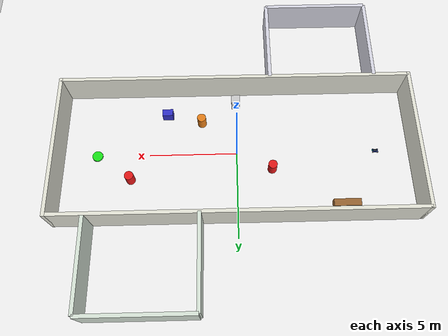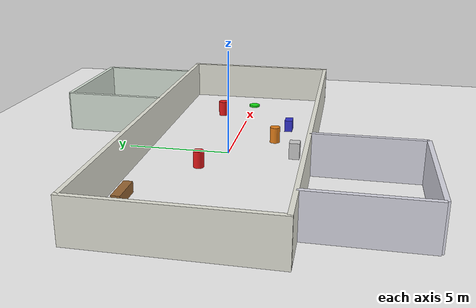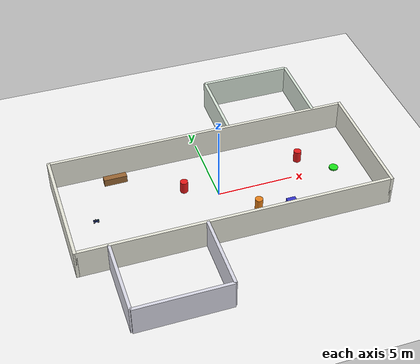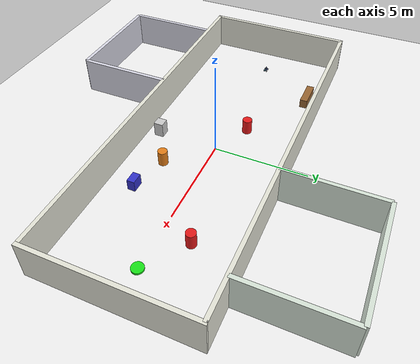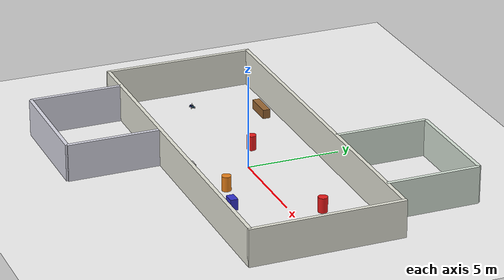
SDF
<?xml version="1.0" ?>
<sdf version="1.8">
  <world name="hospital_corridor">

    <plugin filename="gz-sim-physics-system" name="gz::sim::systems::Physics"/>
    <plugin filename="gz-sim-scene-broadcaster-system" name="gz::sim::systems::SceneBroadcaster"/>
    <plugin filename="gz-sim-user-commands-system" name="gz::sim::systems::UserCommands"/>
    <plugin filename="gz-sim-sensors-system" name="gz::sim::systems::Sensors">
      <render_engine>ogre</render_engine>
    </plugin>

    <scene>
      <ambient>1.0 1.0 1.0 1.0</ambient>
      <background>0.8 0.9 1.0 1.0</background>
      <shadows>false</shadows>
    </scene>

    <light type="directional" name="sun">
      <cast_shadows>false</cast_shadows>
      <pose>0 0 10 0 0 0</pose>
      <diffuse>1.0 1.0 1.0 1</diffuse>
      <specular>0.3 0.3 0.3 1</specular>
      <direction>0 0 -1</direction>
    </light>

    <!-- FLOOR -->
    <model name="ground_plane">
      <static>true</static>
      <link name="link">
        <collision name="collision">
          <geometry><plane><normal>0 0 1</normal><size>50 50</size></plane></geometry>
        </collision>
        <visual name="visual">
          <geometry><plane><normal>0 0 1</normal><size>50 50</size></plane></geometry>
          <material><ambient>0.95 0.95 0.95 1</ambient><diffuse>0.95 0.95 0.95 1</diffuse></material>
        </visual>
      </link>
    </model>

    <!-- ========== MAIN CORRIDOR (horizontal) ========== -->
    <!-- Left wall -->
    <model name="main_wall_left">
      <static>true</static>
      <pose>0 -4 1 0 0 0</pose>
      <link name="link">
        <collision name="collision"><geometry><box><size>20 0.2 2</size></box></geometry></collision>
        <visual name="visual">
          <geometry><box><size>20 0.2 2</size></box></geometry>
          <material><ambient>0.9 0.9 0.85 1</ambient><diffuse>0.9 0.9 0.85 1</diffuse></material>
        </visual>
      </link>
    </model>

    <!-- Right wall -->
    <model name="main_wall_right">
      <static>true</static>
      <pose>0 4 1 0 0 0</pose>
      <link name="link">
        <collision name="collision"><geometry><box><size>20 0.2 2</size></box></geometry></collision>
        <visual name="visual">
          <geometry><box><size>20 0.2 2</size></box></geometry>
          <material><ambient>0.9 0.9 0.85 1</ambient><diffuse>0.9 0.9 0.85 1</diffuse></material>
        </visual>
      </link>
    </model>

    <!-- End wall -->
    <model name="main_wall_end">
      <static>true</static>
      <pose>10 0 1 0 0 0</pose>
      <link name="link">
        <collision name="collision"><geometry><box><size>0.2 8.2 2</size></box></geometry></collision>
        <visual name="visual">
          <geometry><box><size>0.2 8.2 2</size></box></geometry>
          <material><ambient>0.9 0.9 0.85 1</ambient><diffuse>0.9 0.9 0.85 1</diffuse></material>
        </visual>
      </link>
    </model>

    <!-- Start wall -->
    <model name="main_wall_start">
      <static>true</static>
      <pose>-10 0 1 0 0 0</pose>
      <link name="link">
        <collision name="collision"><geometry><box><size>0.2 8.2 2</size></box></geometry></collision>
        <visual name="visual">
          <geometry><box><size>0.2 8.2 2</size></box></geometry>
          <material><ambient>0.9 0.9 0.85 1</ambient><diffuse>0.9 0.9 0.85 1</diffuse></material>
        </visual>
      </link>
    </model>

    <model name="room1_wall_back">
      <static>true</static>
      <pose>-5 -9 1 0 0 0</pose>
      <link name="link">
        <collision name="collision"><geometry><box><size>6 0.2 2</size></box></geometry></collision>
        <visual name="visual">
          <geometry><box><size>6 0.2 2</size></box></geometry>
          <material><ambient>0.85 0.85 0.9 1</ambient><diffuse>0.85 0.85 0.9 1</diffuse></material>
        </visual>
      </link>
    </model>

    <model name="room1_wall_left">
      <static>true</static>
      <pose>-8 -6.5 1 0 0 0</pose>
      <link name="link">
        <collision name="collision"><geometry><box><size>0.2 5 2</size></box></geometry></collision>
        <visual name="visual">
          <geometry><box><size>0.2 5 2</size></box></geometry>
          <material><ambient>0.85 0.85 0.9 1</ambient><diffuse>0.85 0.85 0.9 1</diffuse></material>
        </visual>
      </link>
    </model>

    <model name="room1_wall_right">
      <static>true</static>
      <pose>-2 -6.5 1 0 0 0</pose>
      <link name="link">
        <collision name="collision"><geometry><box><size>0.2 5 2</size></box></geometry></collision>
        <visual name="visual">
          <geometry><box><size>0.2 5 2</size></box></geometry>
          <material><ambient>0.85 0.85 0.9 1</ambient><diffuse>0.85 0.85 0.9 1</diffuse></material>
        </visual>
      </link>
    </model>

    <!-- ========== ROOM 2 (right side) ========== -->
    <model name="room2_wall_back">
      <static>true</static>
      <pose>5 9 1 0 0 0</pose>
      <link name="link">
        <collision name="collision"><geometry><box><size>6 0.2 2</size></box></geometry></collision>
        <visual name="visual">
          <geometry><box><size>6 0.2 2</size></box></geometry>
          <material><ambient>0.85 0.9 0.85 1</ambient><diffuse>0.85 0.9 0.85 1</diffuse></material>
        </visual>
      </link>
    </model>

    <model name="room2_wall_left">
      <static>true</static>
      <pose>2 6.5 1 0 0 0</pose>
      <link name="link">
        <collision name="collision"><geometry><box><size>0.2 5 2</size></box></geometry></collision>
        <visual name="visual">
          <geometry><box><size>0.2 5 2</size></box></geometry>
          <material><ambient>0.85 0.9 0.85 1</ambient><diffuse>0.85 0.9 0.85 1</diffuse></material>
        </visual>
      </link>
    </model>

    <model name="room2_wall_right">
      <static>true</static>
      <pose>8 6.5 1 0 0 0</pose>
      <link name="link">
        <collision name="collision"><geometry><box><size>0.2 5 2</size></box></geometry></collision>
        <visual name="visual">
          <geometry><box><size>0.2 5 2</size></box></geometry>
          <material><ambient>0.85 0.9 0.85 1</ambient><diffuse>0.85 0.9 0.85 1</diffuse></material>
        </visual>
      </link>
    </model>

    <!-- ========== OBSTACLES (simulating people/wheelchairs) ========== -->
    <!-- Person 1 — red, center corridor -->
    <model name="person_1">
      <plugin filename="ignition-gazebo-velocity-control-system"
        name="ignition::gazebo::systems::VelocityControl">
      </plugin>
      <pose>-2 1 0.4 0 0 0</pose>
      <link name="link">
        <kinematic>true</kinematic>
        <inertial>
          <mass>70</mass>

          <inertia>
            <ixx>3.90</ixx><iyy>3.90</iyy><izz>2.19</izz>
            <ixy>0</ixy><ixz>0</ixz><iyz>0</iyz>
          </inertia>
        </inertial>
        <collision name="collision"><geometry><cylinder><radius>0.25</radius><length>0.8</length></cylinder></geometry></collision>
        <visual name="visual">
          <geometry><cylinder><radius>0.25</radius><length>0.8</length></cylinder></geometry>
          <material><ambient>0.9 0.1 0.1 1</ambient><diffuse>0.9 0.1 0.1 1</diffuse></material>
        </visual>
      </link>
    </model>

    <!-- Person 2 — orange, left side -->
    <model name="person_2">
      <plugin filename="ignition-gazebo-velocity-control-system"
        name="ignition::gazebo::systems::VelocityControl">
      </plugin>
      <pose>2 -2 0.4 0 0 0</pose>
      <link name="link">
        <kinematic>true</kinematic>
        <inertial>
          <mass>70</mass>
          <inertia>
            <ixx>3.90</ixx><iyy>3.90</iyy><izz>2.19</izz>
            <ixy>0</ixy><ixz>0</ixz><iyz>0</iyz>
          </inertia>
        </inertial>
        <collision name="collision"><geometry><cylinder><radius>0.25</radius><length>0.8</length></cylinder></geometry></collision>
        <visual name="visual">
          <geometry><cylinder><radius>0.25</radius><length>0.8</length></cylinder></geometry>
          <material><ambient>0.9 0.5 0.1 1</ambient><diffuse>0.9 0.5 0.1 1</diffuse></material>
        </visual>
      </link>
    </model>

    <model name="person_3">
      <static>true</static>
      <pose>6 1.5 0.4 0 0 0</pose>
      <link name="link">
        <collision name="collision"><geometry><cylinder><radius>0.25</radius><length>0.8</length></cylinder></geometry></collision>
        <visual name="visual">
          <geometry><cylinder><radius>0.25</radius><length>0.8</length></cylinder></geometry>
          <material><ambient>0.9 0.1 0.1 1</ambient><diffuse>0.9 0.1 0.1 1</diffuse></material>
        </visual>
      </link>
    </model>

    <!-- Wheelchair/trolley obstacle -->
    <model name="trolley_1">
      <static>true</static>
      <pose>4 -2.5 0.3 0 0 0</pose>
      <link name="link">
        <collision name="collision"><geometry><box><size>0.6 0.4 0.6</size></box></geometry></collision>
        <visual name="visual">
          <geometry><box><size>0.6 0.4 0.6</size></box></geometry>
          <material><ambient>0.2 0.2 0.8 1</ambient><diffuse>0.2 0.2 0.8 1</diffuse></material>
        </visual>
      </link>
    </model>

    <!-- Bench against wall -->
    <model name="bench_1">
      <static>true</static>
      <pose>-6 3.2 0.25 0 0 0</pose>
      <link name="link">
        <collision name="collision"><geometry><box><size>1.5 0.4 0.5</size></box></geometry></collision>
        <visual name="visual">
          <geometry><box><size>1.5 0.4 0.5</size></box></geometry>
          <material><ambient>0.6 0.4 0.2 1</ambient><diffuse>0.6 0.4 0.2 1</diffuse></material>
        </visual>
      </link>
    </model>

    <!-- Medical cart -->
    <model name="cart_1">
      <static>true</static>
      <pose>0 -3.2 0.4 0 0 0</pose>
      <link name="link">
        <collision name="collision"><geometry><box><size>0.5 0.5 0.8</size></box></geometry></collision>
        <visual name="visual">
          <geometry><box><size>0.5 0.5 0.8</size></box></geometry>
          <material><ambient>0.8 0.8 0.8 1</ambient><diffuse>0.8 0.8 0.8 1</diffuse></material>
        </visual>
      </link>
    </model>

    <!-- ========== GOAL MARKER (green cylinder at end) ========== -->

    <model name="goal_marker">
      <static>true</static>
      <pose>8 0 0.05 0 0 0</pose>
      <link name="link">
        <visual name="visual">
          <geometry><cylinder><radius>0.3</radius><length>0.1</length></cylinder></geometry>
          <material><ambient>0.1 0.9 0.1 1</ambient><diffuse>0.1 0.9 0.1 1</diffuse></material>
        </visual>
      </link>
    </model>

    <include>
      <uri>../models/robot.sdf</uri>
      <name>ackermann_robot</name>
      <pose>-8 0 0.1 0 0 0</pose>
    </include>

  </world>
</sdf>

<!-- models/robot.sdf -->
<sdf version='1.7'>
  <model name='ackermann_chassis'>
    <link name='base_link'>
      <inertial>
        <pose>0.009651 0 0.006771 0 -0 0</pose>
        <mass>1.6461</mass>
        <inertia>
          <ixx>0.00465958</ixx>
          <ixy>0</ixy>
          <ixz>-0.000336573</ixz>
          <iyy>0.0160594</iyy>
          <iyz>0</iyz>
          <izz>0.0170788</izz>
        </inertia>
      </inertial>
      <collision name='base_link_collision'>
        <pose>0 0 0 0 -0 0</pose>
        <geometry>
          <box>
            <size>0.3 0.15 0.07</size>
          </box>
        </geometry>
      </collision>
      <collision name='base_link_fixed_joint_lump__camera_link_collision_1'>
        <pose>0.175 0 0.04 0 0.523 0</pose>
        <geometry>
          <box>
            <size>0.05 0.05 0.03</size>
          </box>
        </geometry>
        <surface>
          <contact>
            <ode/>
          </contact>
          <friction>
            <ode/>
          </friction>
        </surface>
      </collision>
      <collision name='base_link_fixed_joint_lump__lidar_link_collision_2'>
        <pose>-0.035 0 0.155 0 -0 0</pose>
        <geometry>
          <cylinder>
            <length>0.0348</length>
            <radius>0.02315</radius>
          </cylinder>
        </geometry>
        <surface>
          <contact>
            <ode/>
          </contact>
          <friction>
            <ode/>
          </friction>
        </surface>
      </collision>
      <visual name='base_link_visual'>
        <pose>0 0 0 0 -0 0</pose>
        <geometry>
          <box>
            <size>0.3 0.15 0.07</size>
          </box>
        </geometry>
        <material>
          <ambient>0.02 0.08 0.42 1</ambient>
          <diffuse>0.03 0.16 0.72 1</diffuse>
          <specular>0.18 0.18 0.2 1</specular>
        </material>
      </visual>
      <visual name='upper_deck_visual'>
        <pose>0 0 0.04 0 0 0</pose>
        <geometry>
          <box>
            <size>0.24 0.13 0.014</size>
          </box>
        </geometry>
        <material>
          <ambient>0.08 0.1 0.14 1</ambient>
          <diffuse>0.12 0.15 0.2 1</diffuse>
          <specular>0.12 0.12 0.12 1</specular>
        </material>
      </visual>
      <visual name='front_bumper_visual'>
        <pose>0.154 0 0 0 0 0</pose>
        <geometry>
          <box>
            <size>0.016 0.17 0.04</size>
          </box>
        </geometry>
        <material>
          <ambient>0.04 0.05 0.06 1</ambient>
          <diffuse>0.07 0.08 0.09 1</diffuse>
        </material>
      </visual>
      <visual name='base_link_fixed_joint_lump__camera_link_visual_1'>
        <pose>0.175 0 0.04 0 0.523 0</pose>
        <geometry>
          <box>
            <size>0.05 0.05 0.03</size>
          </box>
        </geometry>
        <material>
          <ambient>0.02 0.45 0.38 1</ambient>
          <diffuse>0.03 0.72 0.58 1</diffuse>
        </material>
      </visual>
      <visual name='base_link_fixed_joint_lump__lidar_link_visual_2'>
        <pose>-0.035 0 0.155 0 -0 0</pose>
        <geometry>
          <cylinder>
            <length>0.0348</length>
            <radius>0.02315</radius>
          </cylinder>
        </geometry>
        <material>
          <ambient>0.04 0.04 0.05 1</ambient>
          <diffuse>0.08 0.08 0.09 1</diffuse>
        </material>
      </visual>
      <sensor name='camera' type='camera'>
        <topic>/camera/image_raw</topic>
        <update_rate>30</update_rate>
        <camera>
          <horizontal_fov>1.39626</horizontal_fov>
          <image>
            <width>640</width>
            <height>480</height>
            <format>R8G8B8</format>
          </image>
          <clip>
            <near>0.02</near>
            <far>300</far>
          </clip>
        </camera>
        <always_on>1</always_on>
        <visualize>1</visualize>
        <pose>0.175 0 0.04 0 0.523 0</pose>
      </sensor>
      <sensor name='lidar' type='gpu_lidar'>
        <topic>/scan</topic>
        <update_rate>10</update_rate>
        <lidar>
          <scan>
            <horizontal>
              <samples>360</samples>
              <resolution>1</resolution>
              <min_angle>-3.14159</min_angle>
              <max_angle>3.14159</max_angle>
            </horizontal>
          </scan>
          <range>
            <min>0.12</min>
            <max>10</max>
            <resolution>0.01</resolution>
          </range>
        </lidar>
        <always_on>1</always_on>
        <visualize>1</visualize>
        <pose>-0.035 0 0.155 0 -0 0</pose>
      </sensor>
    </link>
    <joint name='front_left_steer_joint' type='revolute'>
      <pose relative_to='base_link'>0.1285 0.096 -0.035 0 -0 0</pose>
      <parent>base_link</parent>
      <child>front_left_steer_link</child>
      <axis>
        <xyz>0 0 1</xyz>
        <limit>
          <lower>-0.5</lower>
          <upper>0.5</upper>
          <effort>10</effort>
          <velocity>1</velocity>
        </limit>
        <dynamics>
          <spring_reference>0</spring_reference>
          <spring_stiffness>0</spring_stiffness>
        </dynamics>
      </axis>
    </joint>
    <link name='front_left_steer_link'>
      <pose relative_to='front_left_steer_joint'>0 0 0 0 -0 0</pose>
      <inertial>
        <pose>0 0 0 0 -0 0</pose>
        <mass>0.05</mass>
        <inertia>
          <ixx>8.33333e-07</ixx>
          <ixy>0</ixy>
          <ixz>0</ixz>
          <iyy>8.33333e-07</iyy>
          <iyz>0</iyz>
          <izz>8.33333e-07</izz>
        </inertia>
      </inertial>
    </link>
    <joint name='front_left_wheel_joint' type='revolute'>
      <pose relative_to='front_left_steer_link'>0 0 0 -1.5707 0 0</pose>
      <parent>front_left_steer_link</parent>
      <child>front_left_wheel_link</child>
      <axis>
        <xyz>0 0 1</xyz>
        <limit>
          <lower>-1e+16</lower>
          <upper>1e+16</upper>
          <effort>10</effort>
          <velocity>10</velocity>
        </limit>
        <dynamics>
          <spring_reference>0</spring_reference>
          <spring_stiffness>0</spring_stiffness>
        </dynamics>
      </axis>
    </joint>
    <link name='front_left_wheel_link'>
      <pose relative_to='front_left_wheel_joint'>0 0 0 0 -0 0</pose>
      <inertial>
        <pose>0 0 0 0 -0 0</pose>
        <mass>0.1</mass>
        <inertia>
          <ixx>6.58333e-05</ixx>
          <ixy>0</ixy>
          <ixz>0</ixz>
          <iyy>6.58333e-05</iyy>
          <iyz>0</iyz>
          <izz>0.000125</izz>
        </inertia>
      </inertial>
      <collision name='front_left_wheel_link_collision'>
        <pose>0 0 0 0 -0 0</pose>
        <geometry>
          <cylinder>
            <length>0.02</length>
            <radius>0.05</radius>
          </cylinder>
        </geometry>
        <surface>
          <friction>
            <ode>
              <mu>0.9</mu>
              <mu2>0.9</mu2>
            </ode>
          </friction>
        </surface>
      </collision>
      <visual name='front_left_wheel_link_visual'>
        <pose>0 0 0 0 -0 0</pose>
        <geometry>
          <cylinder>
            <length>0.02</length>
            <radius>0.05</radius>
          </cylinder>
        </geometry>
        <material>
          <ambient>0.025 0.025 0.03 1</ambient>
          <diffuse>0.05 0.05 0.06 1</diffuse>
        </material>
      </visual>
    </link>
    <joint name='front_right_steer_joint' type='revolute'>
      <pose relative_to='base_link'>0.1285 -0.096 -0.035 0 -0 0</pose>
      <parent>base_link</parent>
      <child>front_right_steer_link</child>
      <axis>
        <xyz>0 0 1</xyz>
        <limit>
          <lower>-0.5</lower>
          <upper>0.5</upper>
          <effort>10</effort>
          <velocity>1</velocity>
        </limit>
        <dynamics>
          <spring_reference>0</spring_reference>
          <spring_stiffness>0</spring_stiffness>
        </dynamics>
      </axis>
    </joint>
    <link name='front_right_steer_link'>
      <pose relative_to='front_right_steer_joint'>0 0 0 0 -0 0</pose>
      <inertial>
        <pose>0 0 0 0 -0 0</pose>
        <mass>0.05</mass>
        <inertia>
          <ixx>8.33333e-07</ixx>
          <ixy>0</ixy>
          <ixz>0</ixz>
          <iyy>8.33333e-07</iyy>
          <iyz>0</iyz>
          <izz>8.33333e-07</izz>
        </inertia>
      </inertial>
    </link>
    <joint name='front_right_wheel_joint' type='revolute'>
      <pose relative_to='front_right_steer_link'>0 0 0 -1.5707 0 0</pose>
      <parent>front_right_steer_link</parent>
      <child>front_right_wheel_link</child>
      <axis>
        <xyz>0 0 1</xyz>
        <limit>
          <lower>-1e+16</lower>
          <upper>1e+16</upper>
          <effort>10</effort>
          <velocity>10</velocity>
        </limit>
        <dynamics>
          <spring_reference>0</spring_reference>
          <spring_stiffness>0</spring_stiffness>
        </dynamics>
      </axis>
    </joint>
    <link name='front_right_wheel_link'>
      <pose relative_to='front_right_wheel_joint'>0 0 0 0 -0 0</pose>
      <inertial>
        <pose>0 0 0 0 -0 0</pose>
        <mass>0.1</mass>
        <inertia>
          <ixx>6.58333e-05</ixx>
          <ixy>0</ixy>
          <ixz>0</ixz>
          <iyy>6.58333e-05</iyy>
          <iyz>0</iyz>
          <izz>0.000125</izz>
        </inertia>
      </inertial>
      <collision name='front_right_wheel_link_collision'>
        <pose>0 0 0 0 -0 0</pose>
        <geometry>
          <cylinder>
            <length>0.02</length>
            <radius>0.05</radius>
          </cylinder>
        </geometry>
        <surface>
          <friction>
            <ode>
              <mu>0.9</mu>
              <mu2>0.9</mu2>
            </ode>
          </friction>
        </surface>
      </collision>
      <visual name='front_right_wheel_link_visual'>
        <pose>0 0 0 0 -0 0</pose>
        <geometry>
          <cylinder>
            <length>0.02</length>
            <radius>0.05</radius>
          </cylinder>
        </geometry>
        <material>
          <ambient>0.025 0.025 0.03 1</ambient>
          <diffuse>0.05 0.05 0.06 1</diffuse>
        </material>
      </visual>
    </link>
    <joint name='rear_left_wheel_joint' type='revolute'>
      <pose relative_to='base_link'>-0.1285 0.096 -0.035 -1.5707 0 0</pose>
      <parent>base_link</parent>
      <child>rear_left_wheel</child>
      <axis>
        <xyz>0 0 1</xyz>
        <limit>
          <lower>-1e+16</lower>
          <upper>1e+16</upper>
          <effort>10</effort>
          <velocity>10</velocity>
        </limit>
        <dynamics>
          <spring_reference>0</spring_reference>
          <spring_stiffness>0</spring_stiffness>
        </dynamics>
      </axis>
    </joint>
    <link name='rear_left_wheel'>
      <pose relative_to='rear_left_wheel_joint'>0 0 0 0 -0 0</pose>
      <inertial>
        <pose>0 0 0 0 -0 0</pose>
        <mass>0.1</mass>
        <inertia>
          <ixx>6.58333e-05</ixx>
          <ixy>0</ixy>
          <ixz>0</ixz>
          <iyy>6.58333e-05</iyy>
          <iyz>0</iyz>
          <izz>0.000125</izz>
        </inertia>
      </inertial>
      <collision name='rear_left_wheel_collision'>
        <pose>0 0 0 0 -0 0</pose>
        <geometry>
          <cylinder>
            <length>0.02</length>
            <radius>0.05</radius>
          </cylinder>
        </geometry>
        <surface>
          <friction>
            <ode>
              <mu>0.9</mu>
              <mu2>0.9</mu2>
            </ode>
          </friction>
        </surface>
      </collision>
      <visual name='rear_left_wheel_visual'>
        <pose>0 0 0 0 -0 0</pose>
        <geometry>
          <cylinder>
            <length>0.02</length>
            <radius>0.05</radius>
          </cylinder>
        </geometry>
        <material>
          <ambient>0.025 0.025 0.03 1</ambient>
          <diffuse>0.05 0.05 0.06 1</diffuse>
        </material>
      </visual>
    </link>
    <joint name='rear_right_wheel_joint' type='revolute'>
      <pose relative_to='base_link'>-0.1285 -0.096 -0.035 -1.5707 0 0</pose>
      <parent>base_link</parent>
      <child>rear_right_wheel</child>
      <axis>
        <xyz>0 0 1</xyz>
        <limit>
          <lower>-1e+16</lower>
          <upper>1e+16</upper>
          <effort>10</effort>
          <velocity>10</velocity>
        </limit>
        <dynamics>
          <spring_reference>0</spring_reference>
          <spring_stiffness>0</spring_stiffness>
        </dynamics>
      </axis>
    </joint>
    <link name='rear_right_wheel'>
      <pose relative_to='rear_right_wheel_joint'>0 0 0 0 -0 0</pose>
      <inertial>
        <pose>0 0 0 0 -0 0</pose>
        <mass>0.1</mass>
        <inertia>
          <ixx>6.58333e-05</ixx>
          <ixy>0</ixy>
          <ixz>0</ixz>
          <iyy>6.58333e-05</iyy>
          <iyz>0</iyz>
          <izz>0.000125</izz>
        </inertia>
      </inertial>
      <collision name='rear_right_wheel_collision'>
        <pose>0 0 0 0 -0 0</pose>
        <geometry>
          <cylinder>
            <length>0.02</length>
            <radius>0.05</radius>
          </cylinder>
        </geometry>
        <surface>
          <friction>
            <ode>
              <mu>0.9</mu>
              <mu2>0.9</mu2>
            </ode>
          </friction>
        </surface>
      </collision>
      <visual name='rear_right_wheel_visual'>
        <pose>0 0 0 0 -0 0</pose>
        <geometry>
          <cylinder>
            <length>0.02</length>
            <radius>0.05</radius>
          </cylinder>
        </geometry>
        <material>
          <ambient>0.025 0.025 0.03 1</ambient>
          <diffuse>0.05 0.05 0.06 1</diffuse>
        </material>
      </visual>
    </link>
    <static>0</static>
    <plugin name='gz::sim::systems::AckermannSteering' filename='gz-sim-ackermann-steering-system'>
      <left_joint>rear_left_wheel_joint</left_joint>
      <right_joint>rear_right_wheel_joint</right_joint>
      <left_steering_joint>front_left_steer_joint</left_steering_joint>
      <right_steering_joint>front_right_steer_joint</right_steering_joint>
      <kingpin_width>0.192</kingpin_width>
      <steering_limit>0.5</steering_limit>
      <wheel_base>0.257</wheel_base>
      <wheel_separation>0.192</wheel_separation>
      <wheel_radius>0.05</wheel_radius>
      <topic>/cmd_vel</topic>
    </plugin>
  </model>
</sdf>
